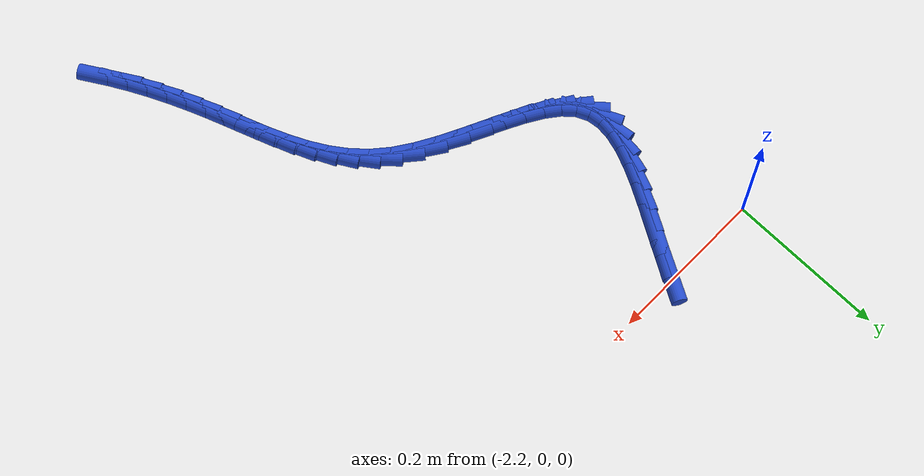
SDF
<sdf version="1.6">
 <world name="default">
  <model name="ground_plane">
   <static>1</static>
   <link name="link">
    <collision name="collision">
     <geometry><plane><normal>0 0 1</normal><size>100 100</size></plane></geometry>
     <surface><friction><ode><mu>100</mu><mu2>50</mu2></ode></friction></surface>
    </collision>
    <visual name="visual">
     <cast_shadows>0</cast_shadows>
     <geometry><plane><normal>0 0 1</normal><size>100 100</size></plane></geometry>
     <material>
      <script><uri>file://media/materials/scripts/gazebo.material</uri><name>Gazebo/WhiteGlow</name></script>
     </material>
    </visual>
   </link>
  </model>
  <model name="line">
   <link name="link_136">
    <pose>-2.0770527872560662 -0.008566738120605013 0.01 0 1.57 1.068241240733676</pose>
    <collision name="collision">
     <geometry><cylinder><radius>0.01</radius><length>0.08</length></cylinder></geometry>
    </collision>
    <visual name="visual">
     <material>
      <script><name>Gazebo/Blue</name><uri>file://media/materials/scripts/gazebo.material</uri></script>
     </material>
     <geometry><cylinder><radius>0.01</radius><length>0.08</length></cylinder></geometry>
    </visual>
   </link>
   <link name="link_137">
    <pose>-2.0917096631322734 -0.035233796256563345 0.01 0 1.57 1.0509894995143927</pose>
    <collision name="collision">
     <geometry><cylinder><radius>0.01</radius><length>0.08</length></cylinder></geometry>
    </collision>
    <visual name="visual">
     <material>
      <script><name>Gazebo/Blue</name><uri>file://media/materials/scripts/gazebo.material</uri></script>
     </material>
     <geometry><cylinder><radius>0.01</radius><length>0.08</length></cylinder></geometry>
    </visual>
   </link>
   <link name="link_138">
    <pose>-2.1065593373766176 -0.06118091350756542 0.01 0 1.57 1.0508161467348716</pose>
    <collision name="collision">
     <geometry><cylinder><radius>0.01</radius><length>0.08</length></cylinder></geometry>
    </collision>
    <visual name="visual">
     <material>
      <script><name>Gazebo/Blue</name><uri>file://media/materials/scripts/gazebo.material</uri></script>
     </material>
     <geometry><cylinder><radius>0.01</radius><length>0.08</length></cylinder></geometry>
    </visual>
   </link>
   <link name="link_139">
    <pose>-2.1209376775484037 -0.08629436034684909 0.01 0 1.57 1.0694937413865677</pose>
    <collision name="collision">
     <geometry><cylinder><radius>0.01</radius><length>0.08</length></cylinder></geometry>
    </collision>
    <visual name="visual">
     <material>
      <script><name>Gazebo/Blue</name><uri>file://media/materials/scripts/gazebo.material</uri></script>
     </material>
     <geometry><cylinder><radius>0.01</radius><length>0.08</length></cylinder></geometry>
    </visual>
   </link>
   <link name="link_140">
    <pose>-2.1341805512069403 -0.11046040724765455 0.01 0 1.57 1.11093631890971</pose>
    <collision name="collision">
     <geometry><cylinder><radius>0.01</radius><length>0.08</length></cylinder></geometry>
    </collision>
    <visual name="visual">
     <material>
      <script><name>Gazebo/Blue</name><uri>file://media/materials/scripts/gazebo.material</uri></script>
     </material>
     <geometry><cylinder><radius>0.01</radius><length>0.08</length></cylinder></geometry>
    </visual>
   </link>
   <link name="link_141">
    <pose>-2.1456238259115343 -0.13356532468322185 0.01 0 1.57 1.1821590677180247</pose>
    <collision name="collision">
     <geometry><cylinder><radius>0.01</radius><length>0.08</length></cylinder></geometry>
    </collision>
    <visual name="visual">
     <material>
      <script><name>Gazebo/Blue</name><uri>file://media/materials/scripts/gazebo.material</uri></script>
     </material>
     <geometry><cylinder><radius>0.01</radius><length>0.08</length></cylinder></geometry>
    </visual>
   </link>
   <link name="link_142">
    <pose>-2.1546033692214936 -0.15549538312678918 0.01 0 1.57 1.294552981076173</pose>
    <collision name="collision">
     <geometry><cylinder><radius>0.01</radius><length>0.08</length></cylinder></geometry>
    </collision>
    <visual name="visual">
     <material>
      <script><name>Gazebo/Blue</name><uri>file://media/materials/scripts/gazebo.material</uri></script>
     </material>
     <geometry><cylinder><radius>0.01</radius><length>0.08</length></cylinder></geometry>
    </visual>
   </link>
   <link name="link_143">
    <pose>-2.1604550486961243 -0.17613685305159713 0.01 0 1.57 1.4641456755745184</pose>
    <collision name="collision">
     <geometry><cylinder><radius>0.01</radius><length>0.08</length></cylinder></geometry>
    </collision>
    <visual name="visual">
     <material>
      <script><name>Gazebo/Blue</name><uri>file://media/materials/scripts/gazebo.material</uri></script>
     </material>
     <geometry><cylinder><radius>0.01</radius><length>0.08</length></cylinder></geometry>
    </visual>
   </link>
   <link name="link_144">
    <pose>-2.1625147318947335 -0.1953760049308839 0.01 0 1.57 -1.4363955682429752</pose>
    <collision name="collision">
     <geometry><cylinder><radius>0.01</radius><length>0.08</length></cylinder></geometry>
    </collision>
    <visual name="visual">
     <material>
      <script><name>Gazebo/Blue</name><uri>file://media/materials/scripts/gazebo.material</uri></script>
     </material>
     <geometry><cylinder><radius>0.01</radius><length>0.08</length></cylinder></geometry>
    </visual>
   </link>
   <link name="link_145">
    <pose>-2.160118286376629 -0.2130991092378901 0.01 0 1.57 -1.1340677833362196</pose>
    <collision name="collision">
     <geometry><cylinder><radius>0.01</radius><length>0.08</length></cylinder></geometry>
    </collision>
    <visual name="visual">
     <material>
      <script><name>Gazebo/Blue</name><uri>file://media/materials/scripts/gazebo.material</uri></script>
     </material>
     <geometry><cylinder><radius>0.01</radius><length>0.08</length></cylinder></geometry>
    </visual>
   </link>
   <link name="link_146">
    <pose>-2.1526054995437276 -0.22919367993556916 0.01 0 1.57 -0.8480576584103328</pose>
    <collision name="collision">
     <geometry><cylinder><radius>0.01</radius><length>0.08</length></cylinder></geometry>
    </collision>
    <visual name="visual">
     <material>
      <script><name>Gazebo/Blue</name><uri>file://media/materials/scripts/gazebo.material</uri></script>
     </material>
     <geometry><cylinder><radius>0.01</radius><length>0.08</length></cylinder></geometry>
    </visual>
   </link>
   <link name="link_147">
    <pose>-2.139808891464023 -0.2437035403246617 0.01 0 1.57 -0.6550688421341406</pose>
    <collision name="collision">
     <geometry><cylinder><radius>0.01</radius><length>0.08</length></cylinder></geometry>
    </collision>
    <visual name="visual">
     <material>
      <script><name>Gazebo/Blue</name><uri>file://media/materials/scripts/gazebo.material</uri></script>
     </material>
     <geometry><cylinder><radius>0.01</radius><length>0.08</length></cylinder></geometry>
    </visual>
   </link>
   <link name="link_148">
    <pose>-2.122528019616311 -0.2569792865011802 0.01 0 1.57 -0.5374556325292339</pose>
    <collision name="collision">
     <geometry><cylinder><radius>0.01</radius><length>0.08</length></cylinder></geometry>
    </collision>
    <visual name="visual">
     <material>
      <script><name>Gazebo/Blue</name><uri>file://media/materials/scripts/gazebo.material</uri></script>
     </material>
     <geometry><cylinder><radius>0.01</radius><length>0.08</length></cylinder></geometry>
    </visual>
   </link>
   <link name="link_149">
    <pose>-2.101674967354991 -0.2694072110885071 0.01 0 1.57 -0.470760944810114</pose>
    <collision name="collision">
     <geometry><cylinder><radius>0.01</radius><length>0.08</length></cylinder></geometry>
    </collision>
    <visual name="visual">
     <material>
      <script><name>Gazebo/Blue</name><uri>file://media/materials/scripts/gazebo.material</uri></script>
     </material>
     <geometry><cylinder><radius>0.01</radius><length>0.08</length></cylinder></geometry>
    </visual>
   </link>
   <link name="link_150">
    <pose>-2.0781618180344648 -0.2813736067100233 0.01 0 1.57 -0.43995773170237773</pose>
    <collision name="collision">
     <geometry><cylinder><radius>0.01</radius><length>0.08</length></cylinder></geometry>
    </collision>
    <visual name="visual">
     <material>
      <script><name>Gazebo/Blue</name><uri>file://media/materials/scripts/gazebo.material</uri></script>
     </material>
     <geometry><cylinder><radius>0.01</radius><length>0.08</length></cylinder></geometry>
    </visual>
   </link>
   <link name="link_151">
    <pose>-2.0529006550091338 -0.29326476598911094 0.01 0 1.57 -0.4373686161639445</pose>
    <collision name="collision">
     <geometry><cylinder><radius>0.01</radius><length>0.08</length></cylinder></geometry>
    </collision>
    <visual name="visual">
     <material>
      <script><name>Gazebo/Blue</name><uri>file://media/materials/scripts/gazebo.material</uri></script>
     </material>
     <geometry><cylinder><radius>0.01</radius><length>0.08</length></cylinder></geometry>
    </visual>
   </link>
   <link name="link_152">
    <pose>-2.0268035616333977 -0.30546698154915203 0.01 0 1.57 -0.4602320616607585</pose>
    <collision name="collision">
     <geometry><cylinder><radius>0.01</radius><length>0.08</length></cylinder></geometry>
    </collision>
    <visual name="visual">
     <material>
      <script><name>Gazebo/Blue</name><uri>file://media/materials/scripts/gazebo.material</uri></script>
     </material>
     <geometry><cylinder><radius>0.01</radius><length>0.08</length></cylinder></geometry>
    </visual>
   </link>
   <link name="link_153">
    <pose>-2.0007826212616595 -0.3183665460135275 0.01 0 1.57 -0.5094200103748132</pose>
    <collision name="collision">
     <geometry><cylinder><radius>0.01</radius><length>0.08</length></cylinder></geometry>
    </collision>
    <visual name="visual">
     <material>
      <script><name>Gazebo/Blue</name><uri>file://media/materials/scripts/gazebo.material</uri></script>
     </material>
     <geometry><cylinder><radius>0.01</radius><length>0.08</length></cylinder></geometry>
    </visual>
   </link>
   <link name="link_154">
    <pose>-1.9757499172483184 -0.3323497520056195 0.01 0 1.57 -0.5889462581901332</pose>
    <collision name="collision">
     <geometry><cylinder><radius>0.01</radius><length>0.08</length></cylinder></geometry>
    </collision>
    <visual name="visual">
     <material>
      <script><name>Gazebo/Blue</name><uri>file://media/materials/scripts/gazebo.material</uri></script>
     </material>
     <geometry><cylinder><radius>0.01</radius><length>0.08</length></cylinder></geometry>
    </visual>
   </link>
   <link name="link_155">
    <pose>-1.952617532947778 -0.3478028921488093 0.01 0 1.57 -0.703994968441637</pose>
    <collision name="collision">
     <geometry><cylinder><radius>0.01</radius><length>0.08</length></cylinder></geometry>
    </collision>
    <visual name="visual">
     <material>
      <script><name>Gazebo/Blue</name><uri>file://media/materials/scripts/gazebo.material</uri></script>
     </material>
     <geometry><cylinder><radius>0.01</radius><length>0.08</length></cylinder></geometry>
    </visual>
   </link>
   <link name="link_156">
    <pose>-1.9322564430636773 -0.36509232169495687 0.01 0 1.57 -0.8326262918655828</pose>
    <collision name="collision">
     <geometry><cylinder><radius>0.01</radius><length>0.08</length></cylinder></geometry>
    </collision>
    <visual name="visual">
     <material>
      <script><name>Gazebo/Blue</name><uri>file://media/materials/scripts/gazebo.material</uri></script>
     </material>
     <geometry><cylinder><radius>0.01</radius><length>0.08</length></cylinder></geometry>
    </visual>
   </link>
   <link name="link_157">
    <pose>-1.9148341274855512 -0.3842432064573561 0.01 0 1.57 -0.9478546371311215</pose>
    <collision name="collision">
     <geometry><cylinder><radius>0.01</radius><length>0.08</length></cylinder></geometry>
    </collision>
    <visual name="visual">
     <material>
      <script><name>Gazebo/Blue</name><uri>file://media/materials/scripts/gazebo.material</uri></script>
     </material>
     <geometry><cylinder><radius>0.01</radius><length>0.08</length></cylinder></geometry>
    </visual>
   </link>
   <link name="link_158">
    <pose>-1.8999274193360196 -0.40499425322394583 0.01 0 1.57 -1.0443456720319624</pose>
    <collision name="collision">
     <geometry><cylinder><radius>0.01</radius><length>0.08</length></cylinder></geometry>
    </collision>
    <visual name="visual">
     <material>
      <script><name>Gazebo/Blue</name><uri>file://media/materials/scripts/gazebo.material</uri></script>
     </material>
     <geometry><cylinder><radius>0.01</radius><length>0.08</length></cylinder></geometry>
    </visual>
   </link>
   <link name="link_159">
    <pose>-1.8870948292004366 -0.42707528249654036 0.01 0 1.57 -1.120037500365324</pose>
    <collision name="collision">
     <geometry><cylinder><radius>0.01</radius><length>0.08</length></cylinder></geometry>
    </collision>
    <visual name="visual">
     <material>
      <script><name>Gazebo/Blue</name><uri>file://media/materials/scripts/gazebo.material</uri></script>
     </material>
     <geometry><cylinder><radius>0.01</radius><length>0.08</length></cylinder></geometry>
    </visual>
   </link>
   <link name="link_160">
    <pose>-1.875894867664154 -0.4502161147769559 0.01 0 1.57 -1.1746600822204103</pose>
    <collision name="collision">
     <geometry><cylinder><radius>0.01</radius><length>0.08</length></cylinder></geometry>
    </collision>
    <visual name="visual">
     <material>
      <script><name>Gazebo/Blue</name><uri>file://media/materials/scripts/gazebo.material</uri></script>
     </material>
     <geometry><cylinder><radius>0.01</radius><length>0.08</length></cylinder></geometry>
    </visual>
   </link>
   <link name="link_161">
    <pose>-1.8658860453125246 -0.4741465705670089 0.01 0 1.57 -1.2087859333828395</pose>
    <collision name="collision">
     <geometry><cylinder><radius>0.01</radius><length>0.08</length></cylinder></geometry>
    </collision>
    <visual name="visual">
     <material>
      <script><name>Gazebo/Blue</name><uri>file://media/materials/scripts/gazebo.material</uri></script>
     </material>
     <geometry><cylinder><radius>0.01</radius><length>0.08</length></cylinder></geometry>
    </visual>
   </link>
   <link name="link_162">
    <pose>-1.8566268727309008 -0.49859647036851334 0.01 0 1.57 -1.2231164719898269</pose>
    <collision name="collision">
     <geometry><cylinder><radius>0.01</radius><length>0.08</length></cylinder></geometry>
    </collision>
    <visual name="visual">
     <material>
      <script><name>Gazebo/Blue</name><uri>file://media/materials/scripts/gazebo.material</uri></script>
     </material>
     <geometry><cylinder><radius>0.01</radius><length>0.08</length></cylinder></geometry>
    </visual>
   </link>
   <link name="link_163">
    <pose>-1.8476758605046362 -0.5232956346832867 0.01 0 1.57 -1.2180787410710474</pose>
    <collision name="collision">
     <geometry><cylinder><radius>0.01</radius><length>0.08</length></cylinder></geometry>
    </collision>
    <visual name="visual">
     <material>
      <script><name>Gazebo/Blue</name><uri>file://media/materials/scripts/gazebo.material</uri></script>
     </material>
     <geometry><cylinder><radius>0.01</radius><length>0.08</length></cylinder></geometry>
    </visual>
   </link>
   <link name="link_164">
    <pose>-1.838591519219083 -0.5479738840131427 0.01 0 1.57 -1.1957740040604863</pose>
    <collision name="collision">
     <geometry><cylinder><radius>0.01</radius><length>0.08</length></cylinder></geometry>
    </collision>
    <visual name="visual">
     <material>
      <script><name>Gazebo/Blue</name><uri>file://media/materials/scripts/gazebo.material</uri></script>
     </material>
     <geometry><cylinder><radius>0.01</radius><length>0.08</length></cylinder></geometry>
    </visual>
   </link>
   <link name="link_165">
    <pose>-1.828981615486321 -0.5723860424745641 0.01 0 1.57 -1.16726221935054</pose>
    <collision name="collision">
     <geometry><cylinder><radius>0.01</radius><length>0.08</length></cylinder></geometry>
    </collision>
    <visual name="visual">
     <material>
      <script><name>Gazebo/Blue</name><uri>file://media/materials/scripts/gazebo.material</uri></script>
     </material>
     <geometry><cylinder><radius>0.01</radius><length>0.08</length></cylinder></geometry>
    </visual>
   </link>
   <link name="link_166">
    <pose>-1.818719254647977 -0.596421626886433 0.01 0 1.57 -1.1361766460265685</pose>
    <collision name="collision">
     <geometry><cylinder><radius>0.01</radius><length>0.08</length></cylinder></geometry>
    </collision>
    <visual name="visual">
     <material>
      <script><name>Gazebo/Blue</name><uri>file://media/materials/scripts/gazebo.material</uri></script>
     </material>
     <geometry><cylinder><radius>0.01</radius><length>0.08</length></cylinder></geometry>
    </visual>
   </link>
   <link name="link_167">
    <pose>-1.8077664945409855 -0.6200153086215839 0.01 0 1.57 -1.1023852012523034</pose>
    <collision name="collision">
     <geometry><cylinder><radius>0.01</radius><length>0.08</length></cylinder></geometry>
    </collision>
    <visual name="visual">
     <material>
      <script><name>Gazebo/Blue</name><uri>file://media/materials/scripts/gazebo.material</uri></script>
     </material>
     <geometry><cylinder><radius>0.01</radius><length>0.08</length></cylinder></geometry>
    </visual>
   </link>
   <link name="link_168">
    <pose>-1.796085457628963 -0.6431017918590001 0.01 0 1.57 -1.0657563390549143</pose>
    <collision name="collision">
     <geometry><cylinder><radius>0.01</radius><length>0.08</length></cylinder></geometry>
    </collision>
    <visual name="visual">
     <material>
      <script><name>Gazebo/Blue</name><uri>file://media/materials/scripts/gazebo.material</uri></script>
     </material>
     <geometry><cylinder><radius>0.01</radius><length>0.08</length></cylinder></geometry>
    </visual>
   </link>
   <link name="link_169">
    <pose>-1.783638266375524 -0.6656157807776661 0.01 0 1.57 -1.026169115169429</pose>
    <collision name="collision">
     <geometry><cylinder><radius>0.01</radius><length>0.08</length></cylinder></geometry>
    </collision>
    <visual name="visual">
     <material>
      <script><name>Gazebo/Blue</name><uri>file://media/materials/scripts/gazebo.material</uri></script>
     </material>
     <geometry><cylinder><radius>0.01</radius><length>0.08</length></cylinder></geometry>
    </visual>
   </link>
  </model>
 </world>
</sdf>
